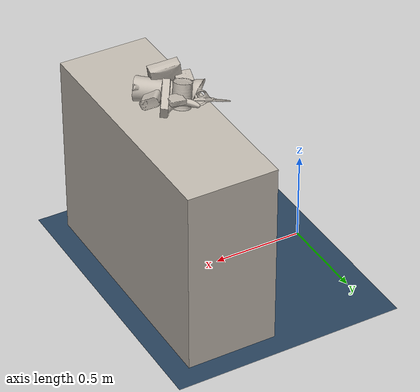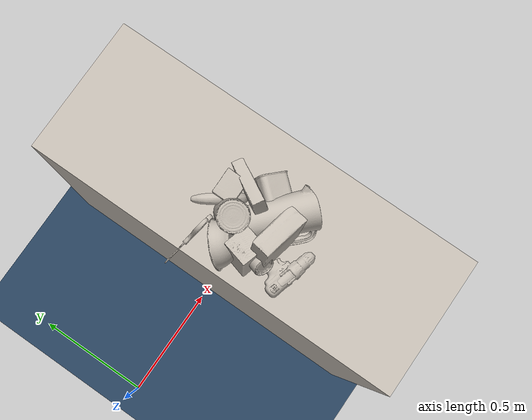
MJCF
<mujoco model="World">

  <compiler angle="radian" balanceinertia="true" inertiafromgeom="true" meshdir="/home/pracsys/GraspClutter6D_local" texturedir="/home/pracsys/GraspClutter6D_local" autolimits="true" />

  <option integrator="Euler" cone="elliptic" solver="CG" noslip_iterations="2">
    <flag warmstart="disable" multiccd="enable" />
  </option>

  <default>
    <geom density="10" />
  </default>

  <asset>

    <texture type="skybox" builtin="flat" rgb1="1 1 1" rgb2="0 0 0" width="512" height="512" />
    <texture name="grid" type="2d" builtin="checker" width="512" height="512" rgb1=".1 .2 .3" rgb2=".2 .3 .4" />
    <material name="grid" texture="grid" texrepeat="2 2" texuniform="true" specular="0" shininess="0" reflectance="0" emission="1" />

    <texture file="models/rs_table/ceramic.png" type="cube" name="tex-ceramic" />
    <material name="table_ceramic" reflectance="0.0" shininess="0.0" specular="0.2" texrepeat="1 1" texture="tex-ceramic" />
  <texture name="obj_000001_0_tex" type="2d" file="models_obj_m/obj_000001/obj_000001.png" /><material name="obj_000001_0_mat" texture="obj_000001_0_tex" specular="1.0" shininess="0.0" /><mesh name="obj_000001_0_vis" file="models_obj_m/obj_000001/obj_000001.obj" /><mesh name="obj_000001_0_obj_000001_collision_0" file="models_obj_m/obj_000001/obj_000001_collision_0.obj" /><mesh name="obj_000001_0_obj_000001_collision_1" file="models_obj_m/obj_000001/obj_000001_collision_1.obj" /><mesh name="obj_000001_0_obj_000001_collision_2" file="models_obj_m/obj_000001/obj_000001_collision_2.obj" /><mesh name="obj_000001_0_obj_000001_collision_3" file="models_obj_m/obj_000001/obj_000001_collision_3.obj" /><texture name="obj_000002_0_tex" type="2d" file="models_obj_m/obj_000002/obj_000002.png" /><material name="obj_000002_0_mat" texture="obj_000002_0_tex" specular="1.0" shininess="0.0" /><mesh name="obj_000002_0_vis" file="models_obj_m/obj_000002/obj_000002.obj" /><mesh name="obj_000002_0_obj_000002_collision_0" file="models_obj_m/obj_000002/obj_000002_collision_0.obj" /><mesh name="obj_000002_0_obj_000002_collision_1" file="models_obj_m/obj_000002/obj_000002_collision_1.obj" /><mesh name="obj_000002_0_obj_000002_collision_2" file="models_obj_m/obj_000002/obj_000002_collision_2.obj" /><mesh name="obj_000002_0_obj_000002_collision_3" file="models_obj_m/obj_000002/obj_000002_collision_3.obj" /><mesh name="obj_000002_0_obj_000002_collision_4" file="models_obj_m/obj_000002/obj_000002_collision_4.obj" /><mesh name="obj_000002_0_obj_000002_collision_5" file="models_obj_m/obj_000002/obj_000002_collision_5.obj" /><mesh name="obj_000002_0_obj_000002_collision_6" file="models_obj_m/obj_000002/obj_000002_collision_6.obj" /><mesh name="obj_000002_0_obj_000002_collision_7" file="models_obj_m/obj_000002/obj_000002_collision_7.obj" /><mesh name="obj_000002_0_obj_000002_collision_8" file="models_obj_m/obj_000002/obj_000002_collision_8.obj" /><mesh name="obj_000002_0_obj_000002_collision_9" file="models_obj_m/obj_000002/obj_000002_collision_9.obj" /><mesh name="obj_000002_0_obj_000002_collision_10" file="models_obj_m/obj_000002/obj_000002_collision_10.obj" /><mesh name="obj_000002_0_obj_000002_collision_11" file="models_obj_m/obj_000002/obj_000002_collision_11.obj" /><texture name="obj_000003_0_tex" type="2d" file="models_obj_m/obj_000003/obj_000003.png" /><material name="obj_000003_0_mat" texture="obj_000003_0_tex" specular="1.0" shininess="0.0" /><mesh name="obj_000003_0_vis" file="models_obj_m/obj_000003/obj_000003.obj" /><mesh name="obj_000003_0_obj_000003_collision_0" file="models_obj_m/obj_000003/obj_000003_collision_0.obj" /><mesh name="obj_000003_0_obj_000003_collision_1" file="models_obj_m/obj_000003/obj_000003_collision_1.obj" /><texture name="obj_000004_0_tex" type="2d" file="models_obj_m/obj_000004/obj_000004.png" /><material name="obj_000004_0_mat" texture="obj_000004_0_tex" specular="1.0" shininess="0.0" /><mesh name="obj_000004_0_vis" file="models_obj_m/obj_000004/obj_000004.obj" /><mesh name="obj_000004_0_obj_000004_collision_0" file="models_obj_m/obj_000004/obj_000004_collision_0.obj" /><mesh name="obj_000004_0_obj_000004_collision_1" file="models_obj_m/obj_000004/obj_000004_collision_1.obj" /><mesh name="obj_000004_0_obj_000004_collision_2" file="models_obj_m/obj_000004/obj_000004_collision_2.obj" /><mesh name="obj_000004_0_obj_000004_collision_3" file="models_obj_m/obj_000004/obj_000004_collision_3.obj" /><mesh name="obj_000004_0_obj_000004_collision_4" file="models_obj_m/obj_000004/obj_000004_collision_4.obj" /><mesh name="obj_000004_0_obj_000004_collision_5" file="models_obj_m/obj_000004/obj_000004_collision_5.obj" /><mesh name="obj_000004_0_obj_000004_collision_6" file="models_obj_m/obj_000004/obj_000004_collision_6.obj" /><mesh name="obj_000004_0_obj_000004_collision_7" file="models_obj_m/obj_000004/obj_000004_collision_7.obj" /><mesh name="obj_000004_0_obj_000004_collision_8" file="models_obj_m/obj_000004/obj_000004_collision_8.obj" /><mesh name="obj_000004_0_obj_000004_collision_9" file="models_obj_m/obj_000004/obj_000004_collision_9.obj" /><mesh name="obj_000004_0_obj_000004_collision_10" file="models_obj_m/obj_000004/obj_000004_collision_10.obj" /><mesh name="obj_000004_0_obj_000004_collision_11" file="models_obj_m/obj_000004/obj_000004_collision_11.obj" /><mesh name="obj_000004_0_obj_000004_collision_12" file="models_obj_m/obj_000004/obj_000004_collision_12.obj" /><mesh name="obj_000004_0_obj_000004_collision_13" file="models_obj_m/obj_000004/obj_000004_collision_13.obj" /><mesh name="obj_000004_0_obj_000004_collision_14" file="models_obj_m/obj_000004/obj_000004_collision_14.obj" /><mesh name="obj_000004_0_obj_000004_collision_15" file="models_obj_m/obj_000004/obj_000004_collision_15.obj" /><mesh name="obj_000004_0_obj_000004_collision_16" file="models_obj_m/obj_000004/obj_000004_collision_16.obj" /><mesh name="obj_000004_0_obj_000004_collision_17" file="models_obj_m/obj_000004/obj_000004_collision_17.obj" /><mesh name="obj_000004_0_obj_000004_collision_18" file="models_obj_m/obj_000004/obj_000004_collision_18.obj" /><mesh name="obj_000004_0_obj_000004_collision_19" file="models_obj_m/obj_000004/obj_000004_collision_19.obj" /><mesh name="obj_000004_0_obj_000004_collision_20" file="models_obj_m/obj_000004/obj_000004_collision_20.obj" /><mesh name="obj_000004_0_obj_000004_collision_21" file="models_obj_m/obj_000004/obj_000004_collision_21.obj" /><mesh name="obj_000004_0_obj_000004_collision_22" file="models_obj_m/obj_000004/obj_000004_collision_22.obj" /><texture name="obj_000006_0_tex" type="2d" file="models_obj_m/obj_000006/obj_000006.png" /><material name="obj_000006_0_mat" texture="obj_000006_0_tex" specular="1.0" shininess="0.0" /><mesh name="obj_000006_0_vis" file="models_obj_m/obj_000006/obj_000006.obj" /><mesh name="obj_000006_0_obj_000006_collision_0" file="models_obj_m/obj_000006/obj_000006_collision_0.obj" /><mesh name="obj_000006_0_obj_000006_collision_1" file="models_obj_m/obj_000006/obj_000006_collision_1.obj" /><mesh name="obj_000006_0_obj_000006_collision_2" file="models_obj_m/obj_000006/obj_000006_collision_2.obj" /><mesh name="obj_000006_0_obj_000006_collision_3" file="models_obj_m/obj_000006/obj_000006_collision_3.obj" /><mesh name="obj_000006_0_obj_000006_collision_4" file="models_obj_m/obj_000006/obj_000006_collision_4.obj" /><mesh name="obj_000006_0_obj_000006_collision_5" file="models_obj_m/obj_000006/obj_000006_collision_5.obj" /><mesh name="obj_000006_0_obj_000006_collision_6" file="models_obj_m/obj_000006/obj_000006_collision_6.obj" /><mesh name="obj_000006_0_obj_000006_collision_7" file="models_obj_m/obj_000006/obj_000006_collision_7.obj" /><mesh name="obj_000006_0_obj_000006_collision_8" file="models_obj_m/obj_000006/obj_000006_collision_8.obj" /><mesh name="obj_000006_0_obj_000006_collision_9" file="models_obj_m/obj_000006/obj_000006_collision_9.obj" /><mesh name="obj_000006_0_obj_000006_collision_10" file="models_obj_m/obj_000006/obj_000006_collision_10.obj" /><mesh name="obj_000006_0_obj_000006_collision_11" file="models_obj_m/obj_000006/obj_000006_collision_11.obj" /><mesh name="obj_000006_0_obj_000006_collision_12" file="models_obj_m/obj_000006/obj_000006_collision_12.obj" /><mesh name="obj_000006_0_obj_000006_collision_13" file="models_obj_m/obj_000006/obj_000006_collision_13.obj" /><texture name="obj_000007_0_tex" type="2d" file="models_obj_m/obj_000007/obj_000007.png" /><material name="obj_000007_0_mat" texture="obj_000007_0_tex" specular="1.0" shininess="0.0" /><mesh name="obj_000007_0_vis" file="models_obj_m/obj_000007/obj_000007.obj" /><mesh name="obj_000007_0_obj_000007_collision_0" file="models_obj_m/obj_000007/obj_000007_collision_0.obj" /><mesh name="obj_000007_0_obj_000007_collision_1" file="models_obj_m/obj_000007/obj_000007_collision_1.obj" /><mesh name="obj_000007_0_obj_000007_collision_2" file="models_obj_m/obj_000007/obj_000007_collision_2.obj" /><mesh name="obj_000007_0_obj_000007_collision_3" file="models_obj_m/obj_000007/obj_000007_collision_3.obj" /><mesh name="obj_000007_0_obj_000007_collision_4" file="models_obj_m/obj_000007/obj_000007_collision_4.obj" /><mesh name="obj_000007_0_obj_000007_collision_5" file="models_obj_m/obj_000007/obj_000007_collision_5.obj" /><mesh name="obj_000007_0_obj_000007_collision_6" file="models_obj_m/obj_000007/obj_000007_collision_6.obj" /><mesh name="obj_000007_0_obj_000007_collision_7" file="models_obj_m/obj_000007/obj_000007_collision_7.obj" /><mesh name="obj_000007_0_obj_000007_collision_8" file="models_obj_m/obj_000007/obj_000007_collision_8.obj" /><texture name="obj_000008_0_tex" type="2d" file="models_obj_m/obj_000008/obj_000008.png" /><material name="obj_000008_0_mat" texture="obj_000008_0_tex" specular="1.0" shininess="0.0" /><mesh name="obj_000008_0_vis" file="models_obj_m/obj_000008/obj_000008.obj" /><mesh name="obj_000008_0_obj_000008_collision_0" file="models_obj_m/obj_000008/obj_000008_collision_0.obj" /><mesh name="obj_000008_0_obj_000008_collision_1" file="models_obj_m/obj_000008/obj_000008_collision_1.obj" /><texture name="obj_000009_0_tex" type="2d" file="models_obj_m/obj_000009/obj_000010.png" /><material name="obj_000009_0_mat" texture="obj_000009_0_tex" specular="1.0" shininess="0.0" /><mesh name="obj_000009_0_vis" file="models_obj_m/obj_000009/obj_000009.obj" /><mesh name="obj_000009_0_obj_000009_collision_0" file="models_obj_m/obj_000009/obj_000009_collision_0.obj" /><mesh name="obj_000009_0_obj_000009_collision_1" file="models_obj_m/obj_000009/obj_000009_collision_1.obj" /><mesh name="obj_000009_0_obj_000009_collision_2" file="models_obj_m/obj_000009/obj_000009_collision_2.obj" /><mesh name="obj_000009_0_obj_000009_collision_3" file="models_obj_m/obj_000009/obj_000009_collision_3.obj" /><mesh name="obj_000009_0_obj_000009_collision_4" file="models_obj_m/obj_000009/obj_000009_collision_4.obj" /><mesh name="obj_000009_0_obj_000009_collision_5" file="models_obj_m/obj_000009/obj_000009_collision_5.obj" /><mesh name="obj_000009_0_obj_000009_collision_6" file="models_obj_m/obj_000009/obj_000009_collision_6.obj" /><mesh name="obj_000009_0_obj_000009_collision_7" file="models_obj_m/obj_000009/obj_000009_collision_7.obj" /><mesh name="obj_000009_0_obj_000009_collision_8" file="models_obj_m/obj_000009/obj_000009_collision_8.obj" /><mesh name="obj_000009_0_obj_000009_collision_9" file="models_obj_m/obj_000009/obj_000009_collision_9.obj" /><mesh name="obj_000009_0_obj_000009_collision_10" file="models_obj_m/obj_000009/obj_000009_collision_10.obj" /><mesh name="obj_000009_0_obj_000009_collision_11" file="models_obj_m/obj_000009/obj_000009_collision_11.obj" /><mesh name="obj_000009_0_obj_000009_collision_12" file="models_obj_m/obj_000009/obj_000009_collision_12.obj" /><mesh name="obj_000009_0_obj_000009_collision_13" file="models_obj_m/obj_000009/obj_000009_collision_13.obj" /><mesh name="obj_000009_0_obj_000009_collision_14" file="models_obj_m/obj_000009/obj_000009_collision_14.obj" /><mesh name="obj_000009_0_obj_000009_collision_15" file="models_obj_m/obj_000009/obj_000009_collision_15.obj" /><mesh name="obj_000009_0_obj_000009_collision_16" file="models_obj_m/obj_000009/obj_000009_collision_16.obj" /><mesh name="obj_000009_0_obj_000009_collision_17" file="models_obj_m/obj_000009/obj_000009_collision_17.obj" /><mesh name="obj_000009_0_obj_000009_collision_18" file="models_obj_m/obj_000009/obj_000009_collision_18.obj" /><mesh name="obj_000009_0_obj_000009_collision_19" file="models_obj_m/obj_000009/obj_000009_collision_19.obj" /><texture name="obj_000010_0_tex" type="2d" file="models_obj_m/obj_000010/obj_000011.png" /><material name="obj_000010_0_mat" texture="obj_000010_0_tex" specular="1.0" shininess="0.0" /><mesh name="obj_000010_0_vis" file="models_obj_m/obj_000010/obj_000010.obj" /><mesh name="obj_000010_0_obj_000010_collision_0" file="models_obj_m/obj_000010/obj_000010_collision_0.obj" /><mesh name="obj_000010_0_obj_000010_collision_1" file="models_obj_m/obj_000010/obj_000010_collision_1.obj" /><texture name="obj_000011_0_tex" type="2d" file="models_obj_m/obj_000011/obj_000011.png" /><material name="obj_000011_0_mat" texture="obj_000011_0_tex" specular="1.0" shininess="0.0" /><mesh name="obj_000011_0_vis" file="models_obj_m/obj_000011/obj_000011.obj" /><mesh name="obj_000011_0_obj_000011_collision_0" file="models_obj_m/obj_000011/obj_000011_collision_0.obj" /><mesh name="obj_000011_0_obj_000011_collision_1" file="models_obj_m/obj_000011/obj_000011_collision_1.obj" /><texture name="obj_000013_0_tex" type="2d" file="models_obj_m/obj_000013/obj_000014.png" /><material name="obj_000013_0_mat" texture="obj_000013_0_tex" specular="1.0" shininess="0.0" /><mesh name="obj_000013_0_vis" file="models_obj_m/obj_000013/obj_000013.obj" /><mesh name="obj_000013_0_obj_000013_collision_0" file="models_obj_m/obj_000013/obj_000013_collision_0.obj" /><mesh name="obj_000013_0_obj_000013_collision_1" file="models_obj_m/obj_000013/obj_000013_collision_1.obj" /><mesh name="obj_000013_0_obj_000013_collision_2" file="models_obj_m/obj_000013/obj_000013_collision_2.obj" /><mesh name="obj_000013_0_obj_000013_collision_3" file="models_obj_m/obj_000013/obj_000013_collision_3.obj" /><mesh name="obj_000013_0_obj_000013_collision_4" file="models_obj_m/obj_000013/obj_000013_collision_4.obj" /><mesh name="obj_000013_0_obj_000013_collision_5" file="models_obj_m/obj_000013/obj_000013_collision_5.obj" /><mesh name="obj_000013_0_obj_000013_collision_6" file="models_obj_m/obj_000013/obj_000013_collision_6.obj" /><mesh name="obj_000013_0_obj_000013_collision_7" file="models_obj_m/obj_000013/obj_000013_collision_7.obj" /><mesh name="obj_000013_0_obj_000013_collision_8" file="models_obj_m/obj_000013/obj_000013_collision_8.obj" /><mesh name="obj_000013_0_obj_000013_collision_9" file="models_obj_m/obj_000013/obj_000013_collision_9.obj" /><mesh name="obj_000013_0_obj_000013_collision_10" file="models_obj_m/obj_000013/obj_000013_collision_10.obj" /><mesh name="obj_000013_0_obj_000013_collision_11" file="models_obj_m/obj_000013/obj_000013_collision_11.obj" /><mesh name="obj_000013_0_obj_000013_collision_12" file="models_obj_m/obj_000013/obj_000013_collision_12.obj" /><mesh name="obj_000013_0_obj_000013_collision_13" file="models_obj_m/obj_000013/obj_000013_collision_13.obj" /><mesh name="obj_000013_0_obj_000013_collision_14" file="models_obj_m/obj_000013/obj_000013_collision_14.obj" /><mesh name="obj_000013_0_obj_000013_collision_15" file="models_obj_m/obj_000013/obj_000013_collision_15.obj" /><mesh name="obj_000013_0_obj_000013_collision_16" file="models_obj_m/obj_000013/obj_000013_collision_16.obj" /><mesh name="obj_000013_0_obj_000013_collision_17" file="models_obj_m/obj_000013/obj_000013_collision_17.obj" /><mesh name="obj_000013_0_obj_000013_collision_18" file="models_obj_m/obj_000013/obj_000013_collision_18.obj" /><mesh name="obj_000013_0_obj_000013_collision_19" file="models_obj_m/obj_000013/obj_000013_collision_19.obj" /><mesh name="obj_000013_0_obj_000013_collision_20" file="models_obj_m/obj_000013/obj_000013_collision_20.obj" /><mesh name="obj_000013_0_obj_000013_collision_21" file="models_obj_m/obj_000013/obj_000013_collision_21.obj" /><mesh name="obj_000013_0_obj_000013_collision_22" file="models_obj_m/obj_000013/obj_000013_collision_22.obj" /><mesh name="obj_000013_0_obj_000013_collision_23" file="models_obj_m/obj_000013/obj_000013_collision_23.obj" /><mesh name="obj_000013_0_obj_000013_collision_24" file="models_obj_m/obj_000013/obj_000013_collision_24.obj" /><mesh name="obj_000013_0_obj_000013_collision_25" file="models_obj_m/obj_000013/obj_000013_collision_25.obj" /><mesh name="obj_000013_0_obj_000013_collision_26" file="models_obj_m/obj_000013/obj_000013_collision_26.obj" /><mesh name="obj_000013_0_obj_000013_collision_27" file="models_obj_m/obj_000013/obj_000013_collision_27.obj" /><mesh name="obj_000013_0_obj_000013_collision_28" file="models_obj_m/obj_000013/obj_000013_collision_28.obj" /><mesh name="obj_000013_0_obj_000013_collision_29" file="models_obj_m/obj_000013/obj_000013_collision_29.obj" /><mesh name="obj_000013_0_obj_000013_collision_30" file="models_obj_m/obj_000013/obj_000013_collision_30.obj" /><mesh name="obj_000013_0_obj_000013_collision_31" file="models_obj_m/obj_000013/obj_000013_collision_31.obj" /><mesh name="obj_000013_0_obj_000013_collision_32" file="models_obj_m/obj_000013/obj_000013_collision_32.obj" /><mesh name="obj_000013_0_obj_000013_collision_33" file="models_obj_m/obj_000013/obj_000013_collision_33.obj" /><mesh name="obj_000013_0_obj_000013_collision_34" file="models_obj_m/obj_000013/obj_000013_collision_34.obj" /><mesh name="obj_000013_0_obj_000013_collision_35" file="models_obj_m/obj_000013/obj_000013_collision_35.obj" /><mesh name="obj_000013_0_obj_000013_collision_36" file="models_obj_m/obj_000013/obj_000013_collision_36.obj" /><mesh name="obj_000013_0_obj_000013_collision_37" file="models_obj_m/obj_000013/obj_000013_collision_37.obj" /><mesh name="obj_000013_0_obj_000013_collision_38" file="models_obj_m/obj_000013/obj_000013_collision_38.obj" /><mesh name="obj_000013_0_obj_000013_collision_39" file="models_obj_m/obj_000013/obj_000013_collision_39.obj" /><mesh name="obj_000013_0_obj_000013_collision_40" file="models_obj_m/obj_000013/obj_000013_collision_40.obj" /><mesh name="obj_000013_0_obj_000013_collision_41" file="models_obj_m/obj_000013/obj_000013_collision_41.obj" /><mesh name="obj_000013_0_obj_000013_collision_42" file="models_obj_m/obj_000013/obj_000013_collision_42.obj" /><texture name="obj_000015_0_tex" type="2d" file="models_obj_m/obj_000015/obj_000015.png" /><material name="obj_000015_0_mat" texture="obj_000015_0_tex" specular="1.0" shininess="0.0" /><mesh name="obj_000015_0_vis" file="models_obj_m/obj_000015/obj_000015.obj" /><mesh name="obj_000015_0_obj_000015_collision_0" file="models_obj_m/obj_000015/obj_000015_collision_0.obj" /><mesh name="obj_000015_0_obj_000015_collision_1" file="models_obj_m/obj_000015/obj_000015_collision_1.obj" /><texture name="obj_000016_0_tex" type="2d" file="models_obj_m/obj_000016/obj_000016.png" /><material name="obj_000016_0_mat" texture="obj_000016_0_tex" specular="1.0" shininess="0.0" /><mesh name="obj_000016_0_vis" file="models_obj_m/obj_000016/obj_000016.obj" /><mesh name="obj_000016_0_obj_000016_collision_0" file="models_obj_m/obj_000016/obj_000016_collision_0.obj" /><mesh name="obj_000016_0_obj_000016_collision_1" file="models_obj_m/obj_000016/obj_000016_collision_1.obj" /><texture name="obj_000017_0_tex" type="2d" file="models_obj_m/obj_000017/obj_000018.png" /><material name="obj_000017_0_mat" texture="obj_000017_0_tex" specular="1.0" shininess="0.0" /><mesh name="obj_000017_0_vis" file="models_obj_m/obj_000017/obj_000017.obj" /><mesh name="obj_000017_0_obj_000017_collision_0" file="models_obj_m/obj_000017/obj_000017_collision_0.obj" /><mesh name="obj_000017_0_obj_000017_collision_1" file="models_obj_m/obj_000017/obj_000017_collision_1.obj" /><mesh name="obj_000017_0_obj_000017_collision_2" file="models_obj_m/obj_000017/obj_000017_collision_2.obj" /><mesh name="obj_000017_0_obj_000017_collision_3" file="models_obj_m/obj_000017/obj_000017_collision_3.obj" /><mesh name="obj_000017_0_obj_000017_collision_4" file="models_obj_m/obj_000017/obj_000017_collision_4.obj" /><mesh name="obj_000017_0_obj_000017_collision_5" file="models_obj_m/obj_000017/obj_000017_collision_5.obj" /><mesh name="obj_000017_0_obj_000017_collision_6" file="models_obj_m/obj_000017/obj_000017_collision_6.obj" /><mesh name="obj_000017_0_obj_000017_collision_7" file="models_obj_m/obj_000017/obj_000017_collision_7.obj" /><mesh name="obj_000017_0_obj_000017_collision_8" file="models_obj_m/obj_000017/obj_000017_collision_8.obj" /><mesh name="obj_000017_0_obj_000017_collision_9" file="models_obj_m/obj_000017/obj_000017_collision_9.obj" /><mesh name="obj_000017_0_obj_000017_collision_10" file="models_obj_m/obj_000017/obj_000017_collision_10.obj" /><mesh name="obj_000017_0_obj_000017_collision_11" file="models_obj_m/obj_000017/obj_000017_collision_11.obj" /><mesh name="obj_000017_0_obj_000017_collision_12" file="models_obj_m/obj_000017/obj_000017_collision_12.obj" /><mesh name="obj_000017_0_obj_000017_collision_13" file="models_obj_m/obj_000017/obj_000017_collision_13.obj" /><mesh name="obj_000017_0_obj_000017_collision_14" file="models_obj_m/obj_000017/obj_000017_collision_14.obj" /><mesh name="obj_000017_0_obj_000017_collision_15" file="models_obj_m/obj_000017/obj_000017_collision_15.obj" /><mesh name="obj_000017_0_obj_000017_collision_16" file="models_obj_m/obj_000017/obj_000017_collision_16.obj" /><mesh name="obj_000017_0_obj_000017_collision_17" file="models_obj_m/obj_000017/obj_000017_collision_17.obj" /><mesh name="obj_000017_0_obj_000017_collision_18" file="models_obj_m/obj_000017/obj_000017_collision_18.obj" /><mesh name="obj_000017_0_obj_000017_collision_19" file="models_obj_m/obj_000017/obj_000017_collision_19.obj" /><mesh name="obj_000017_0_obj_000017_collision_20" file="models_obj_m/obj_000017/obj_000017_collision_20.obj" /><mesh name="obj_000017_0_obj_000017_collision_21" file="models_obj_m/obj_000017/obj_000017_collision_21.obj" /><mesh name="obj_000017_0_obj_000017_collision_22" file="models_obj_m/obj_000017/obj_000017_collision_22.obj" /><mesh name="obj_000017_0_obj_000017_collision_23" file="models_obj_m/obj_000017/obj_000017_collision_23.obj" /><mesh name="obj_000017_0_obj_000017_collision_24" file="models_obj_m/obj_000017/obj_000017_collision_24.obj" /><mesh name="obj_000017_0_obj_000017_collision_25" file="models_obj_m/obj_000017/obj_000017_collision_25.obj" /><mesh name="obj_000017_0_obj_000017_collision_26" file="models_obj_m/obj_000017/obj_000017_collision_26.obj" /><mesh name="obj_000017_0_obj_000017_collision_27" file="models_obj_m/obj_000017/obj_000017_collision_27.obj" /></asset>

  <worldbody>
    <geom name="floor" size="2 2 0.05" type="plane" material="grid" condim="3" />
    <light directional="true" pos="-0.5 0.5 3" dir="0 0 -1" castshadow="false" diffuse="1 1 1" />
    <body name="workspace" pos="0.8 0 0">
      <geom name="shelf_bottom" size="0.25 0.68 0.525" pos="0 0 0.525" type="box" material="table_ceramic" />

    </body>
  <body name="obj_000001_0" pos="0.7182460766582444 0.025468611438986245 1.159275363760882" quat="0.1046095303338077 -0.15426204974965974 0.9795955849583954 0.07518348289613079"><joint name="obj_000001_0_joint" type="free" limited="false" actuatorfrclimited="false" /><geom name="obj_000001_0_geom" type="mesh" contype="0" conaffinity="0" group="1" mesh="obj_000001_0_vis" material="obj_000001_0_mat" /><geom type="mesh" contype="3" conaffinity="3" group="3" rgba="0.9088700260871841 0.5571276366315294 0.02905709149002622 1" mesh="obj_000001_0_obj_000001_collision_0" /><geom type="mesh" contype="3" conaffinity="3" group="3" rgba="0.6410593324381463 0.8402607000713928 0.7776918396385317 1" mesh="obj_000001_0_obj_000001_collision_1" /><geom type="mesh" contype="3" conaffinity="3" group="3" rgba="0.7741652165627951 0.3179101861807435 0.21643336209038533 1" mesh="obj_000001_0_obj_000001_collision_2" /><geom type="mesh" contype="3" conaffinity="3" group="3" rgba="0.8899250795032356 0.5115007140285017 0.5329157655053317 1" mesh="obj_000001_0_obj_000001_collision_3" /></body><body name="obj_000002_0" pos="0.7269082130141934 -0.12523220445471692 1.1560674518884517" quat="0.03180231607135147 -0.7697449820435011 -0.6336374750280563 0.07060329702937086"><joint name="obj_000002_0_joint" type="free" limited="false" actuatorfrclimited="false" /><geom name="obj_000002_0_geom" type="mesh" contype="0" conaffinity="0" group="1" mesh="obj_000002_0_vis" material="obj_000002_0_mat" /><geom type="mesh" contype="3" conaffinity="3" group="3" rgba="0.9306362109825914 0.8330381231198574 0.5807939113573184 1" mesh="obj_000002_0_obj_000002_collision_0" /><geom type="mesh" contype="3" conaffinity="3" group="3" rgba="0.22912688553814242 0.3875596124141527 0.6327362632726903 1" mesh="obj_000002_0_obj_000002_collision_1" /><geom type="mesh" contype="3" conaffinity="3" group="3" rgba="0.5626259340568875 0.06667345172874573 0.9646088448813395 1" mesh="obj_000002_0_obj_000002_collision_2" /><geom type="mesh" contype="3" conaffinity="3" group="3" rgba="0.2846097720774853 0.35893411128232966 0.5389009556396629 1" mesh="obj_000002_0_obj_000002_collision_3" /><geom type="mesh" contype="3" conaffinity="3" group="3" rgba="0.4508218349405261 0.28618698217910077 0.07910182632008134 1" mesh="obj_000002_0_obj_000002_collision_4" /><geom type="mesh" contype="3" conaffinity="3" group="3" rgba="0.9884794335745274 0.515469558330875 0.0707067722442899 1" mesh="obj_000002_0_obj_000002_collision_5" /><geom type="mesh" contype="3" conaffinity="3" group="3" rgba="0.498884402525659 0.4938823346017336 0.12591961447178301 1" mesh="obj_000002_0_obj_000002_collision_6" /><geom type="mesh" contype="3" conaffinity="3" group="3" rgba="0.1950625664278297 0.8240004663666761 0.4881804849656727 1" mesh="obj_000002_0_obj_000002_collision_7" /><geom type="mesh" contype="3" conaffinity="3" group="3" rgba="0.3132936482834743 0.5610004182168095 0.20088818676924047 1" mesh="obj_000002_0_obj_000002_collision_8" /><geom type="mesh" contype="3" conaffinity="3" group="3" rgba="0.13324297406595753 0.30489124850385396 0.8325815622552574 1" mesh="obj_000002_0_obj_000002_collision_9" /><geom type="mesh" contype="3" conaffinity="3" group="3" rgba="0.33502585031452325 0.012724563165045999 0.5652884737523166 1" mesh="obj_000002_0_obj_000002_collision_10" /><geom type="mesh" contype="3" conaffinity="3" group="3" rgba="0.7875683506774841 0.0948782425132162 0.929563921752164 1" mesh="obj_000002_0_obj_000002_collision_11" /></body><body name="obj_000003_0" pos="0.8131830981169086 0.021933098796557894 1.1658481552753666" quat="0.5029472784910952 -0.8140952304651506 0.22392263302361393 -0.18480163747127834"><joint name="obj_000003_0_joint" type="free" limited="false" actuatorfrclimited="false" /><geom name="obj_000003_0_geom" type="mesh" contype="0" conaffinity="0" group="1" mesh="obj_000003_0_vis" material="obj_000003_0_mat" /><geom type="mesh" contype="3" conaffinity="3" group="3" rgba="0.522509730671621 0.2757706064801614 0.3354227120316712 1" mesh="obj_000003_0_obj_000003_collision_0" /><geom type="mesh" contype="3" conaffinity="3" group="3" rgba="0.5516880957351997 0.30786775055087157 0.8022185455408283 1" mesh="obj_000003_0_obj_000003_collision_1" /></body><body name="obj_000004_0" pos="0.6572297929749188 -0.10459084016703712 1.1356813626064646" quat="0.2663227615850846 -0.21815695637722413 0.8552932674108121 0.38723785425453494"><joint name="obj_000004_0_joint" type="free" limited="false" actuatorfrclimited="false" /><geom name="obj_000004_0_geom" type="mesh" contype="0" conaffinity="0" group="1" mesh="obj_000004_0_vis" material="obj_000004_0_mat" /><geom type="mesh" contype="3" conaffinity="3" group="3" rgba="0.9006364109388675 0.519839966144869 0.14706711888770962 1" mesh="obj_000004_0_obj_000004_collision_0" /><geom type="mesh" contype="3" conaffinity="3" group="3" rgba="0.5381862094377646 0.9079565306792778 0.5860391296454226 1" mesh="obj_000004_0_obj_000004_collision_1" /><geom type="mesh" contype="3" conaffinity="3" group="3" rgba="0.5480980169898275 0.08959733837327 0.9583058214694634 1" mesh="obj_000004_0_obj_000004_collision_2" /><geom type="mesh" contype="3" conaffinity="3" group="3" rgba="0.7348365413245799 0.9954340839881138 0.10043620261647124 1" mesh="obj_000004_0_obj_000004_collision_3" /><geom type="mesh" contype="3" conaffinity="3" group="3" rgba="0.15354151346682998 0.3992493537144245 0.9018485612644948 1" mesh="obj_000004_0_obj_000004_collision_4" /><geom type="mesh" contype="3" conaffinity="3" group="3" rgba="0.5002296823323479 0.06984196192688352 0.14791196849948396 1" mesh="obj_000004_0_obj_000004_collision_5" /><geom type="mesh" contype="3" conaffinity="3" group="3" rgba="0.8801698595600871 0.26981609947861984 0.5413749209604201 1" mesh="obj_000004_0_obj_000004_collision_6" /><geom type="mesh" contype="3" conaffinity="3" group="3" rgba="0.7455497002678284 0.842184542639177 0.5322202076862146 1" mesh="obj_000004_0_obj_000004_collision_7" /><geom type="mesh" contype="3" conaffinity="3" group="3" rgba="0.4442591382610347 0.03638499919506211 0.32497635780499234 1" mesh="obj_000004_0_obj_000004_collision_8" /><geom type="mesh" contype="3" conaffinity="3" group="3" rgba="0.347627915730894 0.06862688241171433 0.2798410387094733 1" mesh="obj_000004_0_obj_000004_collision_9" /><geom type="mesh" contype="3" conaffinity="3" group="3" rgba="0.37436058860529653 0.8129023073913533 0.26614439644261234 1" mesh="obj_000004_0_obj_000004_collision_10" /><geom type="mesh" contype="3" conaffinity="3" group="3" rgba="0.6651690258226822 0.3522546747219869 0.10346100033130279 1" mesh="obj_000004_0_obj_000004_collision_11" /><geom type="mesh" contype="3" conaffinity="3" group="3" rgba="0.37709868933847024 0.90775268626264 0.22612048573823684 1" mesh="obj_000004_0_obj_000004_collision_12" /><geom type="mesh" contype="3" conaffinity="3" group="3" rgba="0.40627473735328157 0.5372136836683266 0.09197578627779501 1" mesh="obj_000004_0_obj_000004_collision_13" /><geom type="mesh" contype="3" conaffinity="3" group="3" rgba="0.5166762315831523 0.5043939028531624 0.5872248864695762 1" mesh="obj_000004_0_obj_000004_collision_14" /><geom type="mesh" contype="3" conaffinity="3" group="3" rgba="0.9082988442703623 0.180499146533042 0.06796330417599283 1" mesh="obj_000004_0_obj_000004_collision_15" /><geom type="mesh" contype="3" conaffinity="3" group="3" rgba="0.3943402105248509 0.6197627239371787 0.4344456177319421 1" mesh="obj_000004_0_obj_000004_collision_16" /><geom type="mesh" contype="3" conaffinity="3" group="3" rgba="0.7831743542292524 0.42593724102287467 0.6857518540249657 1" mesh="obj_000004_0_obj_000004_collision_17" /><geom type="mesh" contype="3" conaffinity="3" group="3" rgba="0.16096816650240264 0.6010361248517645 0.059463136740677824 1" mesh="obj_000004_0_obj_000004_collision_18" /><geom type="mesh" contype="3" conaffinity="3" group="3" rgba="0.44263326221518995 0.2502881781833013 0.38014160116271456 1" mesh="obj_000004_0_obj_000004_collision_19" /><geom type="mesh" contype="3" conaffinity="3" group="3" rgba="0.5463028526085283 0.845330838869169 0.028012824828687388 1" mesh="obj_000004_0_obj_000004_collision_20" /><geom type="mesh" contype="3" conaffinity="3" group="3" rgba="0.19910255883632533 0.853207251405083 0.4267815842990055 1" mesh="obj_000004_0_obj_000004_collision_21" /><geom type="mesh" contype="3" conaffinity="3" group="3" rgba="0.013081679159259063 0.8478266493247634 0.5767717804295942 1" mesh="obj_000004_0_obj_000004_collision_22" /></body><body name="obj_000006_0" pos="0.7103101153243349 0.002402121541801666 1.1695798543549283" quat="0.05344403301395032 -0.875362921560186 -0.4424603041959823 -0.1873829504080307"><joint name="obj_000006_0_joint" type="free" limited="false" actuatorfrclimited="false" /><geom name="obj_000006_0_geom" type="mesh" contype="0" conaffinity="0" group="1" mesh="obj_000006_0_vis" material="obj_000006_0_mat" /><geom type="mesh" contype="3" conaffinity="3" group="3" rgba="0.2826735963389645 0.3732613789385052 0.7850961502526286 1" mesh="obj_000006_0_obj_000006_collision_0" /><geom type="mesh" contype="3" conaffinity="3" group="3" rgba="0.2778119464286495 0.852700815001951 0.9131251478975895 1" mesh="obj_000006_0_obj_000006_collision_1" /><geom type="mesh" contype="3" conaffinity="3" group="3" rgba="0.8020587813288036 0.3025792521954269 0.26202108232011456 1" mesh="obj_000006_0_obj_000006_collision_2" /><geom type="mesh" contype="3" conaffinity="3" group="3" rgba="0.8749284451958235 0.7193776905239141 0.13458988549502138 1" mesh="obj_000006_0_obj_000006_collision_3" /><geom type="mesh" contype="3" conaffinity="3" group="3" rgba="0.2130188599738736 0.6558868892940936 0.9509039115354172 1" mesh="obj_000006_0_obj_000006_collision_4" /><geom type="mesh" contype="3" conaffinity="3" group="3" rgba="0.7150440817211193 0.6337582813459244 0.5959789356841197 1" mesh="obj_000006_0_obj_000006_collision_5" /><geom type="mesh" contype="3" conaffinity="3" group="3" rgba="0.5914430060148156 0.6397733981720453 0.4770481905761884 1" mesh="obj_000006_0_obj_000006_collision_6" /><geom type="mesh" contype="3" conaffinity="3" group="3" rgba="0.5370695134833949 0.5650036394015392 0.4193565416983073 1" mesh="obj_000006_0_obj_000006_collision_7" /><geom type="mesh" contype="3" conaffinity="3" group="3" rgba="0.45822516380627654 0.5322962868917284 0.22216684784693663 1" mesh="obj_000006_0_obj_000006_collision_8" /><geom type="mesh" contype="3" conaffinity="3" group="3" rgba="0.006992755819853924 0.22617836990136309 0.6404316243166618 1" mesh="obj_000006_0_obj_000006_collision_9" /><geom type="mesh" contype="3" conaffinity="3" group="3" rgba="0.11371882398649225 0.6403057750389807 0.6565213489306491 1" mesh="obj_000006_0_obj_000006_collision_10" /><geom type="mesh" contype="3" conaffinity="3" group="3" rgba="0.5479453169554588 0.8715696065342489 0.8827485230284868 1" mesh="obj_000006_0_obj_000006_collision_11" /><geom type="mesh" contype="3" conaffinity="3" group="3" rgba="0.29639456023491106 0.716942263751537 0.6685544064500213 1" mesh="obj_000006_0_obj_000006_collision_12" /><geom type="mesh" contype="3" conaffinity="3" group="3" rgba="0.24060769408938665 0.11426077536513679 0.6643453630239089 1" mesh="obj_000006_0_obj_000006_collision_13" /></body><body name="obj_000007_0" pos="0.6847363162836734 -0.06431718933411093 1.139768264979561" quat="0.7085294142376132 0.5640337145201867 0.37648020107900726 0.1952298548895011"><joint name="obj_000007_0_joint" type="free" limited="false" actuatorfrclimited="false" /><geom name="obj_000007_0_geom" type="mesh" contype="0" conaffinity="0" group="1" mesh="obj_000007_0_vis" material="obj_000007_0_mat" /><geom type="mesh" contype="3" conaffinity="3" group="3" rgba="0.8352706854217573 0.9362994234831694 0.293846875833475 1" mesh="obj_000007_0_obj_000007_collision_0" /><geom type="mesh" contype="3" conaffinity="3" group="3" rgba="0.19905331661291714 0.4589533019713804 0.06900329109829795 1" mesh="obj_000007_0_obj_000007_collision_1" /><geom type="mesh" contype="3" conaffinity="3" group="3" rgba="0.09308414112438301 0.15050338013169284 0.9151604575537959 1" mesh="obj_000007_0_obj_000007_collision_2" /><geom type="mesh" contype="3" conaffinity="3" group="3" rgba="0.5321495441159548 0.7015834228771671 0.15224241133161276 1" mesh="obj_000007_0_obj_000007_collision_3" /><geom type="mesh" contype="3" conaffinity="3" group="3" rgba="0.23157390654164967 0.05668202494056429 0.16362068486781922 1" mesh="obj_000007_0_obj_000007_collision_4" /><geom type="mesh" contype="3" conaffinity="3" group="3" rgba="0.434682609159569 0.02891498183785912 0.4135716003922958 1" mesh="obj_000007_0_obj_000007_collision_5" /><geom type="mesh" contype="3" conaffinity="3" group="3" rgba="0.3986174188827881 0.6060589903191558 0.6080009673791554 1" mesh="obj_000007_0_obj_000007_collision_6" /><geom type="mesh" contype="3" conaffinity="3" group="3" rgba="0.19756852407433856 0.9438271125215391 0.3383181352472745 1" mesh="obj_000007_0_obj_000007_collision_7" /><geom type="mesh" contype="3" conaffinity="3" group="3" rgba="0.8336516710698538 0.1310754047491739 0.3201867808203366 1" mesh="obj_000007_0_obj_000007_collision_8" /></body><body name="obj_000008_0" pos="0.7809477342984892 0.07416430097785949 1.1750877452992625" quat="0.05657018987652737 0.622089040123406 0.7802483422649867 0.031899281628476446"><joint name="obj_000008_0_joint" type="free" limited="false" actuatorfrclimited="false" /><geom name="obj_000008_0_geom" type="mesh" contype="0" conaffinity="0" group="1" mesh="obj_000008_0_vis" material="obj_000008_0_mat" /><geom type="mesh" contype="3" conaffinity="3" group="3" rgba="0.01671885427652786 0.8783564729505184 0.3287082962157769 1" mesh="obj_000008_0_obj_000008_collision_0" /><geom type="mesh" contype="3" conaffinity="3" group="3" rgba="0.2759906839891276 0.5799351894391934 0.46463070880456725 1" mesh="obj_000008_0_obj_000008_collision_1" /></body><body name="obj_000009_0" pos="0.8617386540578288 -0.033237494896311975 1.1414303316830967" quat="0.7082861679358488 -0.5956950419239939 0.36165548827179317 -0.11262073139885057"><joint name="obj_000009_0_joint" type="free" limited="false" actuatorfrclimited="false" /><geom name="obj_000009_0_geom" type="mesh" contype="0" conaffinity="0" group="1" mesh="obj_000009_0_vis" material="obj_000009_0_mat" /><geom type="mesh" contype="3" conaffinity="3" group="3" rgba="0.4701424646800718 0.15058678152224558 0.03232555140522908 1" mesh="obj_000009_0_obj_000009_collision_0" /><geom type="mesh" contype="3" conaffinity="3" group="3" rgba="0.6334264391293729 0.7000588704139452 0.9101191958261439 1" mesh="obj_000009_0_obj_000009_collision_1" /><geom type="mesh" contype="3" conaffinity="3" group="3" rgba="0.4796571013469104 0.35150290582234567 0.6375226777586448 1" mesh="obj_000009_0_obj_000009_collision_2" /><geom type="mesh" contype="3" conaffinity="3" group="3" rgba="0.8005895298046106 0.9629796370374781 0.317100801488033 1" mesh="obj_000009_0_obj_000009_collision_3" /><geom type="mesh" contype="3" conaffinity="3" group="3" rgba="0.7316817429575484 0.8125950918942385 0.9770420869852225 1" mesh="obj_000009_0_obj_000009_collision_4" /><geom type="mesh" contype="3" conaffinity="3" group="3" rgba="0.027540659115147248 0.9471989066929749 0.9744029211039258 1" mesh="obj_000009_0_obj_000009_collision_5" /><geom type="mesh" contype="3" conaffinity="3" group="3" rgba="0.2468027165587915 0.11355498828593935 0.640482643727051 1" mesh="obj_000009_0_obj_000009_collision_6" /><geom type="mesh" contype="3" conaffinity="3" group="3" rgba="0.26381115444349046 0.5064233410291425 0.06434432684247016 1" mesh="obj_000009_0_obj_000009_collision_7" /><geom type="mesh" contype="3" conaffinity="3" group="3" rgba="0.39104113124687934 0.2576147934487044 0.9823472559836796 1" mesh="obj_000009_0_obj_000009_collision_8" /><geom type="mesh" contype="3" conaffinity="3" group="3" rgba="0.9013360285468692 0.8336454994592718 0.7736518361085535 1" mesh="obj_000009_0_obj_000009_collision_9" /><geom type="mesh" contype="3" conaffinity="3" group="3" rgba="0.5638034510545271 0.2309865979911192 0.056178319664080933 1" mesh="obj_000009_0_obj_000009_collision_10" /><geom type="mesh" contype="3" conaffinity="3" group="3" rgba="0.07539982230460429 0.8840212053523439 0.37940438346802385 1" mesh="obj_000009_0_obj_000009_collision_11" /><geom type="mesh" contype="3" conaffinity="3" group="3" rgba="0.12997684997558534 0.2197119572502484 0.7348773851044048 1" mesh="obj_000009_0_obj_000009_collision_12" /><geom type="mesh" contype="3" conaffinity="3" group="3" rgba="0.4102032814193337 0.31374038786638225 0.9229380645994204 1" mesh="obj_000009_0_obj_000009_collision_13" /><geom type="mesh" contype="3" conaffinity="3" group="3" rgba="0.6775180913271598 0.3730860518815964 0.7560922645576079 1" mesh="obj_000009_0_obj_000009_collision_14" /><geom type="mesh" contype="3" conaffinity="3" group="3" rgba="0.20013413652544576 0.046709010626810876 0.4530831720844085 1" mesh="obj_000009_0_obj_000009_collision_15" /><geom type="mesh" contype="3" conaffinity="3" group="3" rgba="0.997743233778264 0.8720065066436486 0.22893873285390964 1" mesh="obj_000009_0_obj_000009_collision_16" /><geom type="mesh" contype="3" conaffinity="3" group="3" rgba="0.2486444461791405 0.8482398554397806 0.9913239367051718 1" mesh="obj_000009_0_obj_000009_collision_17" /><geom type="mesh" contype="3" conaffinity="3" group="3" rgba="0.8552881572534362 0.878526833870521 0.5714311973878448 1" mesh="obj_000009_0_obj_000009_collision_18" /><geom type="mesh" contype="3" conaffinity="3" group="3" rgba="0.6375258423342278 0.3334964947472784 0.042644175833863374 1" mesh="obj_000009_0_obj_000009_collision_19" /></body><body name="obj_000010_0" pos="0.7397789280022089 0.08298267000568076 1.1190754922684152" quat="0.20805766156727262 0.687979405430692 0.25940865425918713 -0.645060847720452"><joint name="obj_000010_0_joint" type="free" limited="false" actuatorfrclimited="false" /><geom name="obj_000010_0_geom" type="mesh" contype="0" conaffinity="0" group="1" mesh="obj_000010_0_vis" material="obj_000010_0_mat" /><geom type="mesh" contype="3" conaffinity="3" group="3" rgba="0.8732881017396182 0.3343353395712876 0.08871879557869766 1" mesh="obj_000010_0_obj_000010_collision_0" /><geom type="mesh" contype="3" conaffinity="3" group="3" rgba="0.7768969898522989 0.17302799154634285 0.5980561258489338 1" mesh="obj_000010_0_obj_000010_collision_1" /></body><body name="obj_000011_0" pos="0.7896311832133953 -0.10036553754119315 1.134314312811948" quat="0.2532906938401715 -0.3282340615602901 0.6340162959209671 -0.6527859999664948"><joint name="obj_000011_0_joint" type="free" limited="false" actuatorfrclimited="false" /><geom name="obj_000011_0_geom" type="mesh" contype="0" conaffinity="0" group="1" mesh="obj_000011_0_vis" material="obj_000011_0_mat" /><geom type="mesh" contype="3" conaffinity="3" group="3" rgba="0.30507868086283874 0.9701993068122707 0.0021639835779936334 1" mesh="obj_000011_0_obj_000011_collision_0" /><geom type="mesh" contype="3" conaffinity="3" group="3" rgba="0.30046086308937203 0.33184924156596896 0.2382777103232726 1" mesh="obj_000011_0_obj_000011_collision_1" /></body><body name="obj_000013_0" pos="0.636500784495677 -0.005214833840767916 1.1356052470299485" quat="0.5911078327139456 -0.5706143924156651 -0.5685285079817248 -0.04202476513196892"><joint name="obj_000013_0_joint" type="free" limited="false" actuatorfrclimited="false" /><geom name="obj_000013_0_geom" type="mesh" contype="0" conaffinity="0" group="1" mesh="obj_000013_0_vis" material="obj_000013_0_mat" /><geom type="mesh" contype="3" conaffinity="3" group="3" rgba="0.7144449078304332 0.20729995565427417 0.9178363700574447 1" mesh="obj_000013_0_obj_000013_collision_0" /><geom type="mesh" contype="3" conaffinity="3" group="3" rgba="0.8679721083209072 0.681676504550008 0.39306036015103996 1" mesh="obj_000013_0_obj_000013_collision_1" /><geom type="mesh" contype="3" conaffinity="3" group="3" rgba="0.4222762318266222 0.7236405457523389 0.5776720096370943 1" mesh="obj_000013_0_obj_000013_collision_2" /><geom type="mesh" contype="3" conaffinity="3" group="3" rgba="0.3811132546629832 0.20215465648724362 0.7520145076915546 1" mesh="obj_000013_0_obj_000013_collision_3" /><geom type="mesh" contype="3" conaffinity="3" group="3" rgba="0.8942398171755435 0.15581696020393487 0.2948183730971583 1" mesh="obj_000013_0_obj_000013_collision_4" /><geom type="mesh" contype="3" conaffinity="3" group="3" rgba="0.2417240360311006 0.7592152106015807 0.3902675366012601 1" mesh="obj_000013_0_obj_000013_collision_5" /><geom type="mesh" contype="3" conaffinity="3" group="3" rgba="0.7575682610228988 0.71336761782297 0.9000744888221621 1" mesh="obj_000013_0_obj_000013_collision_6" /><geom type="mesh" contype="3" conaffinity="3" group="3" rgba="0.6446126328225535 0.791897169193733 0.903810115591806 1" mesh="obj_000013_0_obj_000013_collision_7" /><geom type="mesh" contype="3" conaffinity="3" group="3" rgba="0.16065949094204024 0.7129315196731527 0.26362017540303107 1" mesh="obj_000013_0_obj_000013_collision_8" /><geom type="mesh" contype="3" conaffinity="3" group="3" rgba="0.3807771090070753 0.2466972699876384 0.03935990556652813 1" mesh="obj_000013_0_obj_000013_collision_9" /><geom type="mesh" contype="3" conaffinity="3" group="3" rgba="0.13563712303681397 0.6930968980104955 0.5192151078476201 1" mesh="obj_000013_0_obj_000013_collision_10" /><geom type="mesh" contype="3" conaffinity="3" group="3" rgba="0.024566780316822356 0.28274751850143287 0.43892641421651424 1" mesh="obj_000013_0_obj_000013_collision_11" /><geom type="mesh" contype="3" conaffinity="3" group="3" rgba="0.9611355436206976 0.1398983653776168 0.013281849357456355 1" mesh="obj_000013_0_obj_000013_collision_12" /><geom type="mesh" contype="3" conaffinity="3" group="3" rgba="0.16394261226899853 0.18011486841153612 0.261500747000427 1" mesh="obj_000013_0_obj_000013_collision_13" /><geom type="mesh" contype="3" conaffinity="3" group="3" rgba="0.9372545164731062 0.43083457597005825 0.2977176404473417 1" mesh="obj_000013_0_obj_000013_collision_14" /><geom type="mesh" contype="3" conaffinity="3" group="3" rgba="0.031516698743391136 0.3219220373951125 0.8781862881808276 1" mesh="obj_000013_0_obj_000013_collision_15" /><geom type="mesh" contype="3" conaffinity="3" group="3" rgba="0.02675922996645186 0.9922976068282781 0.007381407445995691 1" mesh="obj_000013_0_obj_000013_collision_16" /><geom type="mesh" contype="3" conaffinity="3" group="3" rgba="0.2616329704439392 0.8542187029589711 0.7241329221218575 1" mesh="obj_000013_0_obj_000013_collision_17" /><geom type="mesh" contype="3" conaffinity="3" group="3" rgba="0.4206173565556577 0.19568760805702212 0.07953404942627174 1" mesh="obj_000013_0_obj_000013_collision_18" /><geom type="mesh" contype="3" conaffinity="3" group="3" rgba="0.6258372434102025 0.941102970428584 0.9848429359171544 1" mesh="obj_000013_0_obj_000013_collision_19" /><geom type="mesh" contype="3" conaffinity="3" group="3" rgba="0.48476862781453456 0.6464837012010779 0.09451531120989676 1" mesh="obj_000013_0_obj_000013_collision_20" /><geom type="mesh" contype="3" conaffinity="3" group="3" rgba="0.1499291510091808 0.6953859819117357 0.6465605447898165 1" mesh="obj_000013_0_obj_000013_collision_21" /><geom type="mesh" contype="3" conaffinity="3" group="3" rgba="0.10867033303428852 0.978104636023048 0.357697068924551 1" mesh="obj_000013_0_obj_000013_collision_22" /><geom type="mesh" contype="3" conaffinity="3" group="3" rgba="0.5296024898295869 0.79373291584904 0.9945877669564267 1" mesh="obj_000013_0_obj_000013_collision_23" /><geom type="mesh" contype="3" conaffinity="3" group="3" rgba="0.2535176902922558 0.7850034645037743 0.5109712695625952 1" mesh="obj_000013_0_obj_000013_collision_24" /><geom type="mesh" contype="3" conaffinity="3" group="3" rgba="0.6056982213796875 0.40921073467235836 0.09899078122809213 1" mesh="obj_000013_0_obj_000013_collision_25" /><geom type="mesh" contype="3" conaffinity="3" group="3" rgba="0.883355825637934 0.22180977392998258 0.02657703610970763 1" mesh="obj_000013_0_obj_000013_collision_26" /><geom type="mesh" contype="3" conaffinity="3" group="3" rgba="0.40558726586937655 0.4789794972792186 0.3060234025628258 1" mesh="obj_000013_0_obj_000013_collision_27" /><geom type="mesh" contype="3" conaffinity="3" group="3" rgba="0.40694994851305444 0.05141490066920784 0.738857658183313 1" mesh="obj_000013_0_obj_000013_collision_28" /><geom type="mesh" contype="3" conaffinity="3" group="3" rgba="0.08167123731304904 0.44468972618504576 0.909513688034694 1" mesh="obj_000013_0_obj_000013_collision_29" /><geom type="mesh" contype="3" conaffinity="3" group="3" rgba="0.43983320336223675 0.023288947525740622 0.31535110360234764 1" mesh="obj_000013_0_obj_000013_collision_30" /><geom type="mesh" contype="3" conaffinity="3" group="3" rgba="0.9246187387738158 0.19662054774999016 0.0025641556684291578 1" mesh="obj_000013_0_obj_000013_collision_31" /><geom type="mesh" contype="3" conaffinity="3" group="3" rgba="0.045116612411272294 0.03568353398017865 0.4988035813233547 1" mesh="obj_000013_0_obj_000013_collision_32" /><geom type="mesh" contype="3" conaffinity="3" group="3" rgba="0.9319052096815352 0.9810101582709009 0.3479210478200858 1" mesh="obj_000013_0_obj_000013_collision_33" /><geom type="mesh" contype="3" conaffinity="3" group="3" rgba="0.6159303212672878 0.5133135910288431 0.325090192866053 1" mesh="obj_000013_0_obj_000013_collision_34" /><geom type="mesh" contype="3" conaffinity="3" group="3" rgba="0.9849344998388689 0.24294440606249046 0.6152785687052574 1" mesh="obj_000013_0_obj_000013_collision_35" /><geom type="mesh" contype="3" conaffinity="3" group="3" rgba="0.23831369728617768 0.30135001589082866 0.01950178993412488 1" mesh="obj_000013_0_obj_000013_collision_36" /><geom type="mesh" contype="3" conaffinity="3" group="3" rgba="0.8893176464217286 0.9125313127217429 0.9492610344899751 1" mesh="obj_000013_0_obj_000013_collision_37" /><geom type="mesh" contype="3" conaffinity="3" group="3" rgba="0.051120110890551906 0.8122331757110894 0.932558326795465 1" mesh="obj_000013_0_obj_000013_collision_38" /><geom type="mesh" contype="3" conaffinity="3" group="3" rgba="0.5797100002940134 0.6688424793390167 0.625986013027617 1" mesh="obj_000013_0_obj_000013_collision_39" /><geom type="mesh" contype="3" conaffinity="3" group="3" rgba="0.8702933956914729 0.6777120300180547 0.8117268026780544 1" mesh="obj_000013_0_obj_000013_collision_40" /><geom type="mesh" contype="3" conaffinity="3" group="3" rgba="0.7113154344650927 0.4504182301539761 0.9850233708858935 1" mesh="obj_000013_0_obj_000013_collision_41" /><geom type="mesh" contype="3" conaffinity="3" group="3" rgba="0.6463048132580995 0.23232105267837944 0.9412536874981714 1" mesh="obj_000013_0_obj_000013_collision_42" /></body><body name="obj_000015_0" pos="0.6945832041920529 -0.1563795129252225 1.1043732815440719" quat="0.11870251137833661 -0.0009417776509535456 0.005812059740679998 0.9929124064130241"><joint name="obj_000015_0_joint" type="free" limited="false" actuatorfrclimited="false" /><geom name="obj_000015_0_geom" type="mesh" contype="0" conaffinity="0" group="1" mesh="obj_000015_0_vis" material="obj_000015_0_mat" /><geom type="mesh" contype="3" conaffinity="3" group="3" rgba="0.3190316346741193 0.1952698898252364 0.8681956882216872 1" mesh="obj_000015_0_obj_000015_collision_0" /><geom type="mesh" contype="3" conaffinity="3" group="3" rgba="0.05496090459096381 0.16901046389765384 0.29761740439272677 1" mesh="obj_000015_0_obj_000015_collision_1" /></body><body name="obj_000016_0" pos="0.6514443717048876 -0.07116950099948041 1.1005133870749373" quat="0.7185389846912581 -0.010198338710482546 0.06754814970582312 0.6921235213729715"><joint name="obj_000016_0_joint" type="free" limited="false" actuatorfrclimited="false" /><geom name="obj_000016_0_geom" type="mesh" contype="0" conaffinity="0" group="1" mesh="obj_000016_0_vis" material="obj_000016_0_mat" /><geom type="mesh" contype="3" conaffinity="3" group="3" rgba="0.26001420709121326 0.2392394811811206 0.8526178870500972 1" mesh="obj_000016_0_obj_000016_collision_0" /><geom type="mesh" contype="3" conaffinity="3" group="3" rgba="0.7022628207821711 0.8409075002048506 0.5809282073216406 1" mesh="obj_000016_0_obj_000016_collision_1" /></body><body name="obj_000017_0" pos="0.5858804379798735 0.09075114422381972 1.140564597752547" quat="0.5622963686281679 -0.4501260515322742 0.5169868746433385 0.4625298941755579"><joint name="obj_000017_0_joint" type="free" limited="false" actuatorfrclimited="false" /><geom name="obj_000017_0_geom" type="mesh" contype="0" conaffinity="0" group="1" mesh="obj_000017_0_vis" material="obj_000017_0_mat" /><geom type="mesh" contype="3" conaffinity="3" group="3" rgba="0.8300607436027256 0.7746450626520026 0.028259677595148802 1" mesh="obj_000017_0_obj_000017_collision_0" /><geom type="mesh" contype="3" conaffinity="3" group="3" rgba="0.8722382693318378 0.7274771061770118 0.3531693377771803 1" mesh="obj_000017_0_obj_000017_collision_1" /><geom type="mesh" contype="3" conaffinity="3" group="3" rgba="0.5980877609329729 0.08964925108942157 0.9827409328247976 1" mesh="obj_000017_0_obj_000017_collision_2" /><geom type="mesh" contype="3" conaffinity="3" group="3" rgba="0.12896852327670105 0.23262496541784183 0.708307388236716 1" mesh="obj_000017_0_obj_000017_collision_3" /><geom type="mesh" contype="3" conaffinity="3" group="3" rgba="0.49139690091838406 0.8926335265499304 0.5725586181467778 1" mesh="obj_000017_0_obj_000017_collision_4" /><geom type="mesh" contype="3" conaffinity="3" group="3" rgba="0.7937783832204612 0.42217433502668733 0.08859246894572148 1" mesh="obj_000017_0_obj_000017_collision_5" /><geom type="mesh" contype="3" conaffinity="3" group="3" rgba="0.31968501261458615 0.055692886468857505 0.13372686667046396 1" mesh="obj_000017_0_obj_000017_collision_6" /><geom type="mesh" contype="3" conaffinity="3" group="3" rgba="0.13222025522357372 0.17526274312101753 0.06896550916264677 1" mesh="obj_000017_0_obj_000017_collision_7" /><geom type="mesh" contype="3" conaffinity="3" group="3" rgba="0.619764861047721 0.6525147311748656 0.1945147804146634 1" mesh="obj_000017_0_obj_000017_collision_8" /><geom type="mesh" contype="3" conaffinity="3" group="3" rgba="0.7542938162430041 0.5932445765901436 0.7103646795954568 1" mesh="obj_000017_0_obj_000017_collision_9" /><geom type="mesh" contype="3" conaffinity="3" group="3" rgba="0.2524389464191312 0.4250197643184034 0.5484201401942239 1" mesh="obj_000017_0_obj_000017_collision_10" /><geom type="mesh" contype="3" conaffinity="3" group="3" rgba="0.12747630615148275 0.8773457669467531 0.2903516195529615 1" mesh="obj_000017_0_obj_000017_collision_11" /><geom type="mesh" contype="3" conaffinity="3" group="3" rgba="0.36705284536176563 0.43857882856348707 0.1921920616144135 1" mesh="obj_000017_0_obj_000017_collision_12" /><geom type="mesh" contype="3" conaffinity="3" group="3" rgba="0.020558595977965055 0.21526825750714773 0.772725517547242 1" mesh="obj_000017_0_obj_000017_collision_13" /><geom type="mesh" contype="3" conaffinity="3" group="3" rgba="0.10547210479742064 0.9890552387987501 0.2674120461420154 1" mesh="obj_000017_0_obj_000017_collision_14" /><geom type="mesh" contype="3" conaffinity="3" group="3" rgba="0.5360270978662599 0.047077211229519134 0.4732059459915734 1" mesh="obj_000017_0_obj_000017_collision_15" /><geom type="mesh" contype="3" conaffinity="3" group="3" rgba="0.32224738434780165 0.15368027561517583 0.33294464645257393 1" mesh="obj_000017_0_obj_000017_collision_16" /><geom type="mesh" contype="3" conaffinity="3" group="3" rgba="0.062153350878422775 0.15503522074777376 0.031107839074490995 1" mesh="obj_000017_0_obj_000017_collision_17" /><geom type="mesh" contype="3" conaffinity="3" group="3" rgba="0.8894341143153127 0.9274654291220618 0.8960713779272304 1" mesh="obj_000017_0_obj_000017_collision_18" /><geom type="mesh" contype="3" conaffinity="3" group="3" rgba="0.6407302652172892 0.7024854384405839 0.8132487939275371 1" mesh="obj_000017_0_obj_000017_collision_19" /><geom type="mesh" contype="3" conaffinity="3" group="3" rgba="0.4219128475173737 0.12864992232644612 0.6362594297911104 1" mesh="obj_000017_0_obj_000017_collision_20" /><geom type="mesh" contype="3" conaffinity="3" group="3" rgba="0.6553489886066428 0.7743604048132783 0.24056368137361295 1" mesh="obj_000017_0_obj_000017_collision_21" /><geom type="mesh" contype="3" conaffinity="3" group="3" rgba="0.0020229106216186343 0.307330070733969 0.17780994515928916 1" mesh="obj_000017_0_obj_000017_collision_22" /><geom type="mesh" contype="3" conaffinity="3" group="3" rgba="0.6179802568288576 0.3727782053738845 0.7596080060713355 1" mesh="obj_000017_0_obj_000017_collision_23" /><geom type="mesh" contype="3" conaffinity="3" group="3" rgba="0.2543795317816884 0.44576637101255845 0.39514403782482055 1" mesh="obj_000017_0_obj_000017_collision_24" /><geom type="mesh" contype="3" conaffinity="3" group="3" rgba="0.1432102771351177 0.4024857781955712 0.7572092015391542 1" mesh="obj_000017_0_obj_000017_collision_25" /><geom type="mesh" contype="3" conaffinity="3" group="3" rgba="0.5090090981373664 0.38439090770599904 0.5322095653024554 1" mesh="obj_000017_0_obj_000017_collision_26" /><geom type="mesh" contype="3" conaffinity="3" group="3" rgba="0.40226807840950896 0.5364817416307209 0.6608784606481888 1" mesh="obj_000017_0_obj_000017_collision_27" /></body></worldbody>

<size memory="64M" /></mujoco>
